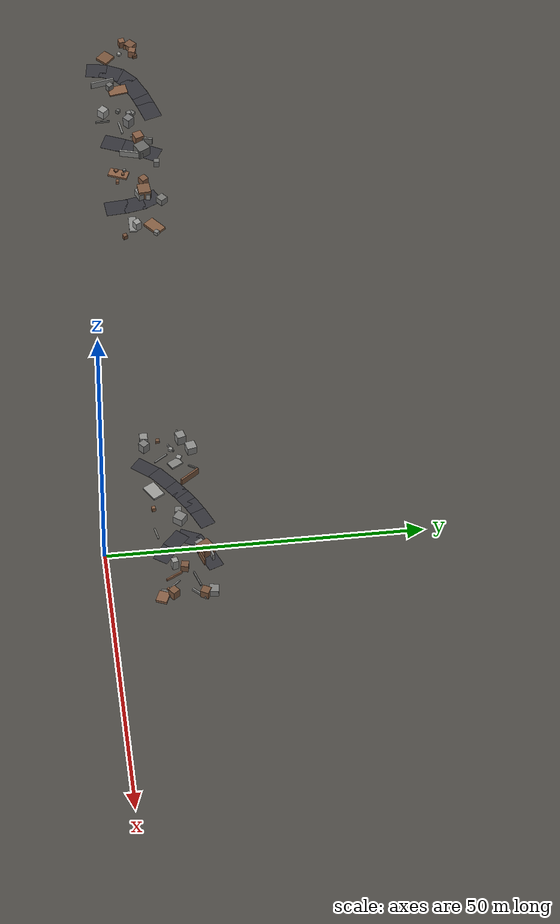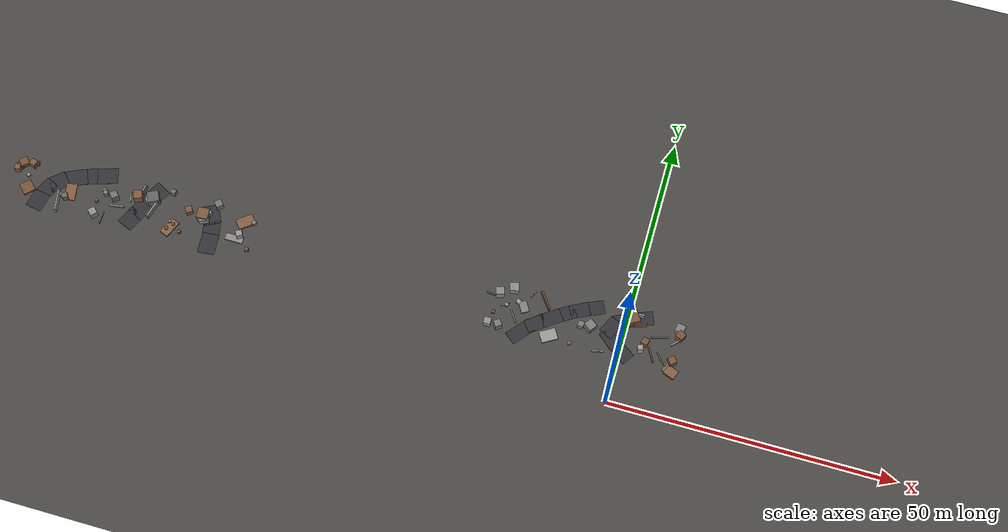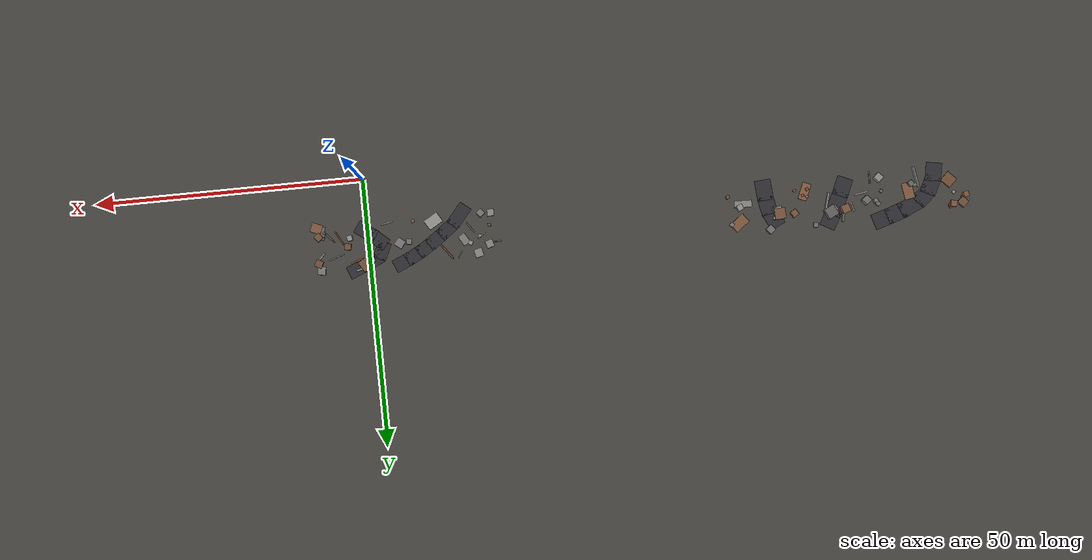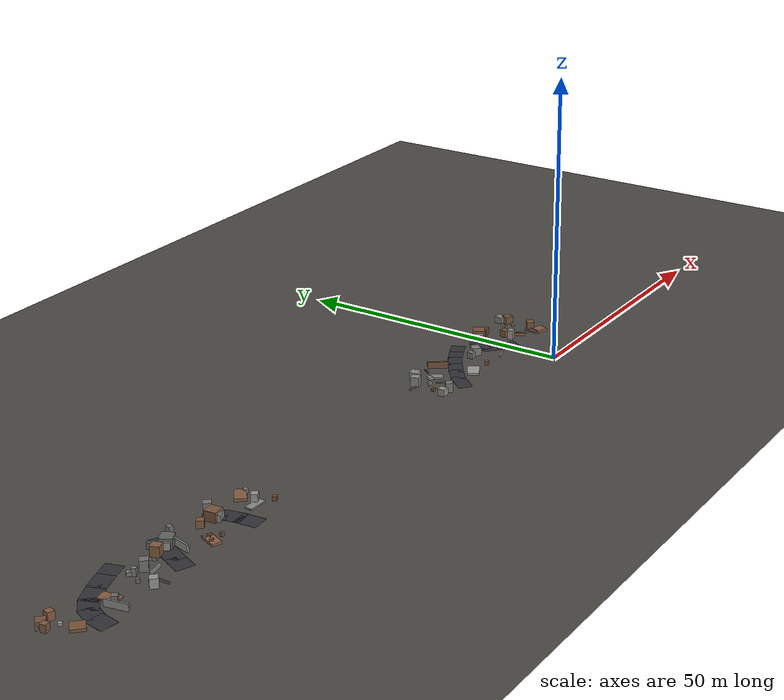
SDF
<sdf version="1.6">
 <world name="navitas_arena">
  <model name="ground_plane">
   <static>true</static>
   <link name="link">
    <collision name="collision">
     <geometry><plane><normal>0 0 1</normal><size>400 400</size></plane></geometry>
     <surface><friction><ode><mu>0.800</mu><mu2>0.800</mu2></ode></friction></surface>
    </collision>
    <visual name="visual">
     <cast_shadows>false</cast_shadows>
     <geometry><plane><normal>0 0 1</normal><size>400 400</size></plane></geometry>
     <material><ambient>0.300 0.290 0.270 1</ambient><diffuse>0.300 0.290 0.270 1</diffuse></material>
    </visual>
   </link>
  </model>
  <model name="road_kolay_1_15">
   <static>true</static>
   <pose>-105.991 8.426 0.040 0 0 1.407</pose>
   <link name="link">
    <collision name="col"><geometry><box><size>3.394 3.000 0.020</size></box></geometry></collision>
    <visual name="vis">
     <geometry><box><size>3.394 3.000 0.020</size></box></geometry>
     <material><ambient>0.20 0.20 0.22 1</ambient><diffuse>0.20 0.20 0.22 1</diffuse></material>
    </visual>
   </link>
  </model>
  <model name="road_kolay_1_16">
   <static>true</static>
   <pose>-105.227 10.817 0.040 0 0 1.121</pose>
   <link name="link">
    <collision name="col"><geometry><box><size>3.479 3.000 0.020</size></box></geometry></collision>
    <visual name="vis">
     <geometry><box><size>3.479 3.000 0.020</size></box></geometry>
     <material><ambient>0.20 0.20 0.22 1</ambient><diffuse>0.20 0.20 0.22 1</diffuse></material>
    </visual>
   </link>
  </model>
  <model name="road_kolay_1_17">
   <static>true</static>
   <pose>-103.758 12.767 0.040 0 0 0.715</pose>
   <link name="link">
    <collision name="col"><geometry><box><size>3.306 3.000 0.020</size></box></geometry></collision>
    <visual name="vis">
     <geometry><box><size>3.306 3.000 0.020</size></box></geometry>
     <material><ambient>0.20 0.20 0.22 1</ambient><diffuse>0.20 0.20 0.22 1</diffuse></material>
    </visual>
   </link>
  </model>
  <model name="road_kolay_1_18">
   <static>true</static>
   <pose>-101.231 14.292 0.040 0 0 0.427</pose>
   <link name="link">
    <collision name="col"><geometry><box><size>4.456 3.000 0.020</size></box></geometry></collision>
    <visual name="vis">
     <geometry><box><size>4.456 3.000 0.020</size></box></geometry>
     <material><ambient>0.20 0.20 0.22 1</ambient><diffuse>0.20 0.20 0.22 1</diffuse></material>
    </visual>
   </link>
  </model>
  <model name="road_kolay_1_19">
   <static>true</static>
   <pose>-98.331 15.460 0.040 0 0 0.325</pose>
   <link name="link">
    <collision name="col"><geometry><box><size>3.606 3.000 0.020</size></box></geometry></collision>
    <visual name="vis">
     <geometry><box><size>3.606 3.000 0.020</size></box></geometry>
     <material><ambient>0.20 0.20 0.22 1</ambient><diffuse>0.20 0.20 0.22 1</diffuse></material>
    </visual>
   </link>
  </model>
  <model name="road_kolay_1_20">
   <static>true</static>
   <pose>-95.734 16.298 0.040 0 0 0.299</pose>
   <link name="link">
    <collision name="col"><geometry><box><size>3.652 3.000 0.020</size></box></geometry></collision>
    <visual name="vis">
     <geometry><box><size>3.652 3.000 0.020</size></box></geometry>
     <material><ambient>0.20 0.20 0.22 1</ambient><diffuse>0.20 0.20 0.22 1</diffuse></material>
    </visual>
   </link>
  </model>
  <model name="road_kolay_2_12">
   <static>true</static>
   <pose>-88.860 9.639 0.040 0 0 1.168</pose>
   <link name="link">
    <collision name="col"><geometry><box><size>3.537 3.000 0.020</size></box></geometry></collision>
    <visual name="vis">
     <geometry><box><size>3.537 3.000 0.020</size></box></geometry>
     <material><ambient>0.20 0.20 0.22 1</ambient><diffuse>0.20 0.20 0.22 1</diffuse></material>
    </visual>
   </link>
  </model>
  <model name="road_kolay_2_13">
   <static>true</static>
   <pose>-87.527 12.588 0.040 0 0 1.131</pose>
   <link name="link">
    <collision name="col"><geometry><box><size>4.738 3.000 0.020</size></box></geometry></collision>
    <visual name="vis">
     <geometry><box><size>4.738 3.000 0.020</size></box></geometry>
     <material><ambient>0.20 0.20 0.22 1</ambient><diffuse>0.20 0.20 0.22 1</diffuse></material>
    </visual>
   </link>
  </model>
  <model name="road_kolay_2_14">
   <static>true</static>
   <pose>-86.109 15.414 0.040 0 0 1.067</pose>
   <link name="link">
    <collision name="col"><geometry><box><size>3.389 3.000 0.020</size></box></geometry></collision>
    <visual name="vis">
     <geometry><box><size>3.389 3.000 0.020</size></box></geometry>
     <material><ambient>0.20 0.20 0.22 1</ambient><diffuse>0.20 0.20 0.22 1</diffuse></material>
    </visual>
   </link>
  </model>
  <model name="road_kolay_3_14">
   <static>true</static>
   <pose>-74.221 8.910 0.040 0 0 1.650</pose>
   <link name="link">
    <collision name="col"><geometry><box><size>3.849 3.000 0.020</size></box></geometry></collision>
    <visual name="vis">
     <geometry><box><size>3.849 3.000 0.020</size></box></geometry>
     <material><ambient>0.20 0.20 0.22 1</ambient><diffuse>0.20 0.20 0.22 1</diffuse></material>
    </visual>
   </link>
  </model>
  <model name="road_kolay_3_15">
   <static>true</static>
   <pose>-74.607 11.690 0.040 0 0 1.773</pose>
   <link name="link">
    <collision name="col"><geometry><box><size>3.575 3.000 0.020</size></box></geometry></collision>
    <visual name="vis">
     <geometry><box><size>3.575 3.000 0.020</size></box></geometry>
     <material><ambient>0.20 0.20 0.22 1</ambient><diffuse>0.20 0.20 0.22 1</diffuse></material>
    </visual>
   </link>
  </model>
  <model name="road_kolay_3_16">
   <static>true</static>
   <pose>-75.477 14.234 0.040 0 0 2.024</pose>
   <link name="link">
    <collision name="col"><geometry><box><size>3.646 3.000 0.020</size></box></geometry></collision>
    <visual name="vis">
     <geometry><box><size>3.646 3.000 0.020</size></box></geometry>
     <material><ambient>0.20 0.20 0.22 1</ambient><diffuse>0.20 0.20 0.22 1</diffuse></material>
    </visual>
   </link>
  </model>
  <model name="blk_kolay_2_1_0">
   <static>true</static>
   <pose>-86.859 13.598 0.600 0 0 0.508</pose>
   <link name="link">
    <collision name="col"><geometry><box><size>1.029 1.029 1.200</size></box></geometry></collision>
    <visual name="vis">
     <geometry><box><size>1.029 1.029 1.200</size></box></geometry>
     <material><ambient>0.57 0.57 0.56 1</ambient><diffuse>0.57 0.57 0.56 1</diffuse></material>
    </visual>
   </link>
  </model>
  <model name="blk_kolay_2_1_1">
   <static>true</static>
   <pose>-85.567 12.383 0.600 0 0 1.314</pose>
   <link name="link">
    <collision name="col"><geometry><box><size>3.867 0.335 1.200</size></box></geometry></collision>
    <visual name="vis">
     <geometry><box><size>3.867 0.335 1.200</size></box></geometry>
     <material><ambient>0.54 0.54 0.53 1</ambient><diffuse>0.54 0.54 0.53 1</diffuse></material>
    </visual>
   </link>
  </model>
  <model name="blk_kolay_2_1_2">
   <static>true</static>
   <pose>-87.331 14.141 0.600 0 0 0.393</pose>
   <link name="link">
    <collision name="col"><geometry><box><size>0.584 0.584 1.200</size></box></geometry></collision>
    <visual name="vis">
     <geometry><box><size>0.584 0.584 1.200</size></box></geometry>
     <material><ambient>0.51 0.36 0.26 1</ambient><diffuse>0.51 0.36 0.26 1</diffuse></material>
    </visual>
   </link>
  </model>
  <model name="blk_kolay_2_1_3">
   <static>true</static>
   <pose>-88.463 14.715 0.600 0 0 1.386</pose>
   <link name="link">
    <collision name="col"><geometry><box><size>2.800 0.387 1.200</size></box></geometry></collision>
    <visual name="vis">
     <geometry><box><size>2.800 0.387 1.200</size></box></geometry>
     <material><ambient>0.43 0.43 0.42 1</ambient><diffuse>0.43 0.43 0.42 1</diffuse></material>
    </visual>
   </link>
  </model>
  <model name="blk_kolay_2_1_4">
   <static>true</static>
   <pose>-86.170 14.145 0.858 0 0 2.045</pose>
   <link name="link">
    <collision name="col"><geometry><box><size>2.029 2.029 1.716</size></box></geometry></collision>
    <visual name="vis">
     <geometry><box><size>2.029 2.029 1.716</size></box></geometry>
     <material><ambient>0.40 0.40 0.39 1</ambient><diffuse>0.40 0.40 0.39 1</diffuse></material>
    </visual>
   </link>
  </model>
  <model name="blk_kolay_2_1_5">
   <static>true</static>
   <pose>-88.877 13.804 0.860 0 0 0.342</pose>
   <link name="link">
    <collision name="col"><geometry><box><size>1.504 1.504 1.719</size></box></geometry></collision>
    <visual name="vis">
     <geometry><box><size>1.504 1.504 1.719</size></box></geometry>
     <material><ambient>0.52 0.36 0.26 1</ambient><diffuse>0.52 0.36 0.26 1</diffuse></material>
    </visual>
   </link>
  </model>
  <model name="blk_kolay_3_1_0">
   <static>true</static>
   <pose>-74.710 16.332 0.600 0 0 2.255</pose>
   <link name="link">
    <collision name="col"><geometry><box><size>1.280 1.280 1.200</size></box></geometry></collision>
    <visual name="vis">
     <geometry><box><size>1.280 1.280 1.200</size></box></geometry>
     <material><ambient>0.46 0.46 0.45 1</ambient><diffuse>0.46 0.46 0.45 1</diffuse></material>
    </visual>
   </link>
  </model>
  <model name="blk_kolay_3_1_1">
   <static>true</static>
   <pose>-76.638 13.593 0.838 0 0 1.657</pose>
   <link name="link">
    <collision name="col"><geometry><box><size>2.026 2.026 1.676</size></box></geometry></collision>
    <visual name="vis">
     <geometry><box><size>2.026 2.026 1.676</size></box></geometry>
     <material><ambient>0.49 0.35 0.25 1</ambient><diffuse>0.49 0.35 0.25 1</diffuse></material>
    </visual>
   </link>
  </model>
  <model name="blk_kolay_3_1_2">
   <static>true</static>
   <pose>-76.441 13.194 0.600 0 0 1.935</pose>
   <link name="link">
    <collision name="col"><geometry><box><size>1.768 1.768 1.200</size></box></geometry></collision>
    <visual name="vis">
     <geometry><box><size>1.768 1.768 1.200</size></box></geometry>
     <material><ambient>0.54 0.54 0.53 1</ambient><diffuse>0.54 0.54 0.53 1</diffuse></material>
    </visual>
   </link>
  </model>
  <model name="blk_kolay_3_1_3">
   <static>true</static>
   <pose>-75.715 14.254 0.600 0 0 1.275</pose>
   <link name="link">
    <collision name="col"><geometry><box><size>0.671 0.671 1.200</size></box></geometry></collision>
    <visual name="vis">
     <geometry><box><size>0.671 0.671 1.200</size></box></geometry>
     <material><ambient>0.60 0.60 0.59 1</ambient><diffuse>0.60 0.60 0.59 1</diffuse></material>
    </visual>
   </link>
  </model>
  <model name="blk_kolay_3_1_4">
   <static>true</static>
   <pose>-75.833 14.212 0.600 0 0 0.117</pose>
   <link name="link">
    <collision name="col"><geometry><box><size>0.583 0.583 1.200</size></box></geometry></collision>
    <visual name="vis">
     <geometry><box><size>0.583 0.583 1.200</size></box></geometry>
     <material><ambient>0.45 0.45 0.44 1</ambient><diffuse>0.45 0.45 0.44 1</diffuse></material>
    </visual>
   </link>
  </model>
  <model name="deb_kolay_6">
   <static>true</static>
   <pose>-90.384 13.557 0.102 0 0 1.856</pose>
   <link name="link">
    <collision name="col"><geometry><box><size>1.927 0.241 0.204</size></box></geometry></collision>
    <visual name="vis">
     <geometry><box><size>1.927 0.241 0.204</size></box></geometry>
     <material><ambient>0.59 0.59 0.58 1</ambient><diffuse>0.59 0.59 0.58 1</diffuse></material>
    </visual>
   </link>
  </model>
  <model name="deb_kolay_7">
   <static>true</static>
   <pose>-81.242 10.546 0.321 0 0 1.812</pose>
   <link name="link">
    <collision name="col"><geometry><box><size>0.436 0.436 0.642</size></box></geometry></collision>
    <visual name="vis">
     <geometry><box><size>0.436 0.436 0.642</size></box></geometry>
     <material><ambient>0.53 0.37 0.26 1</ambient><diffuse>0.53 0.37 0.26 1</diffuse></material>
    </visual>
   </link>
  </model>
  <model name="deb_kolay_25">
   <static>true</static>
   <pose>-79.404 13.769 0.609 0 0 0.580</pose>
   <link name="link">
    <collision name="col"><geometry><box><size>1.184 1.184 1.219</size></box></geometry></collision>
    <visual name="vis">
     <geometry><box><size>1.184 1.184 1.219</size></box></geometry>
     <material><ambient>0.50 0.35 0.25 1</ambient><diffuse>0.50 0.35 0.25 1</diffuse></material>
    </visual>
   </link>
  </model>
  <model name="deb_kolay_30">
   <static>true</static>
   <pose>-108.583 15.022 0.315 0 0 1.833</pose>
   <link name="link">
    <collision name="col"><geometry><box><size>0.771 0.771 0.630</size></box></geometry></collision>
    <visual name="vis">
     <geometry><box><size>0.771 0.771 0.630</size></box></geometry>
     <material><ambient>0.46 0.32 0.23 1</ambient><diffuse>0.46 0.32 0.23 1</diffuse></material>
    </visual>
   </link>
  </model>
  <model name="deb_kolay_41">
   <static>true</static>
   <pose>-81.700 9.876 0.176 0 0 1.180</pose>
   <link name="link">
    <collision name="col"><geometry><box><size>3.201 1.613 0.352</size></box></geometry></collision>
    <visual name="vis">
     <geometry><box><size>3.201 1.613 0.352</size></box></geometry>
     <material><ambient>0.55 0.38 0.27 1</ambient><diffuse>0.55 0.38 0.27 1</diffuse></material>
    </visual>
   </link>
  </model>
  <model name="deb_kolay_60">
   <static>true</static>
   <pose>-100.939 11.514 0.121 0 0 1.742</pose>
   <link name="link">
    <collision name="col"><geometry><box><size>3.096 1.891 0.242</size></box></geometry></collision>
    <visual name="vis">
     <geometry><box><size>3.096 1.891 0.242</size></box></geometry>
     <material><ambient>0.53 0.37 0.26 1</ambient><diffuse>0.53 0.37 0.26 1</diffuse></material>
    </visual>
   </link>
  </model>
  <model name="deb_kolay_64">
   <static>true</static>
   <pose>-108.619 10.173 0.215 0 0 2.353</pose>
   <link name="link">
    <collision name="col"><geometry><box><size>2.190 2.139 0.431</size></box></geometry></collision>
    <visual name="vis">
     <geometry><box><size>2.190 2.139 0.431</size></box></geometry>
     <material><ambient>0.47 0.33 0.23 1</ambient><diffuse>0.47 0.33 0.23 1</diffuse></material>
    </visual>
   </link>
  </model>
  <model name="deb_kolay_65">
   <static>true</static>
   <pose>-110.910 13.759 0.410 0 0 2.949</pose>
   <link name="link">
    <collision name="col"><geometry><box><size>0.675 0.675 0.820</size></box></geometry></collision>
    <visual name="vis">
     <geometry><box><size>0.675 0.675 0.820</size></box></geometry>
     <material><ambient>0.49 0.34 0.24 1</ambient><diffuse>0.49 0.34 0.24 1</diffuse></material>
    </visual>
   </link>
  </model>
  <model name="deb_kolay_89">
   <static>true</static>
   <pose>-111.458 13.164 0.639 0 0 1.769</pose>
   <link name="link">
    <collision name="col"><geometry><box><size>0.986 0.986 1.279</size></box></geometry></collision>
    <visual name="vis">
     <geometry><box><size>0.986 0.986 1.279</size></box></geometry>
     <material><ambient>0.52 0.36 0.26 1</ambient><diffuse>0.52 0.36 0.26 1</diffuse></material>
    </visual>
   </link>
  </model>
  <model name="deb_kolay_101">
   <static>true</static>
   <pose>-69.360 11.764 0.764 0 0 2.040</pose>
   <link name="link">
    <collision name="col"><geometry><box><size>1.076 1.076 1.528</size></box></geometry></collision>
    <visual name="vis">
     <geometry><box><size>1.076 1.076 1.528</size></box></geometry>
     <material><ambient>0.60 0.60 0.59 1</ambient><diffuse>0.60 0.60 0.59 1</diffuse></material>
    </visual>
   </link>
  </model>
  <model name="deb_kolay_102">
   <static>true</static>
   <pose>-93.935 8.340 0.181 0 0 1.582</pose>
   <link name="link">
    <collision name="col"><geometry><box><size>2.228 0.212 0.363</size></box></geometry></collision>
    <visual name="vis">
     <geometry><box><size>2.228 0.212 0.363</size></box></geometry>
     <material><ambient>0.42 0.42 0.41 1</ambient><diffuse>0.42 0.42 0.41 1</diffuse></material>
    </visual>
   </link>
  </model>
  <model name="deb_kolay_113">
   <static>true</static>
   <pose>-109.016 14.709 0.678 0 0 2.860</pose>
   <link name="link">
    <collision name="col"><geometry><box><size>1.118 1.118 1.357</size></box></geometry></collision>
    <visual name="vis">
     <geometry><box><size>1.118 1.118 1.357</size></box></geometry>
     <material><ambient>0.52 0.36 0.26 1</ambient><diffuse>0.52 0.36 0.26 1</diffuse></material>
    </visual>
   </link>
  </model>
  <model name="deb_kolay_119">
   <static>true</static>
   <pose>-110.812 14.541 0.505 0 0 2.338</pose>
   <link name="link">
    <collision name="col"><geometry><box><size>1.487 1.487 1.011</size></box></geometry></collision>
    <visual name="vis">
     <geometry><box><size>1.487 1.487 1.011</size></box></geometry>
     <material><ambient>0.47 0.33 0.24 1</ambient><diffuse>0.47 0.33 0.24 1</diffuse></material>
    </visual>
   </link>
  </model>
  <model name="deb_kolay_135">
   <static>true</static>
   <pose>-95.486 8.585 0.762 0 0 0.783</pose>
   <link name="link">
    <collision name="col"><geometry><box><size>1.309 1.309 1.524</size></box></geometry></collision>
    <visual name="vis">
     <geometry><box><size>1.309 1.309 1.524</size></box></geometry>
     <material><ambient>0.58 0.58 0.57 1</ambient><diffuse>0.58 0.58 0.57 1</diffuse></material>
    </visual>
   </link>
  </model>
  <model name="deb_kolay_140">
   <static>true</static>
   <pose>-67.337 9.593 0.373 0 0 1.949</pose>
   <link name="link">
    <collision name="col"><geometry><box><size>0.676 0.676 0.746</size></box></geometry></collision>
    <visual name="vis">
     <geometry><box><size>0.676 0.676 0.746</size></box></geometry>
     <material><ambient>0.46 0.32 0.23 1</ambient><diffuse>0.46 0.32 0.23 1</diffuse></material>
    </visual>
   </link>
  </model>
  <model name="deb_kolay_144">
   <static>true</static>
   <pose>-82.149 9.509 0.340 0 0 2.113</pose>
   <link name="link">
    <collision name="col"><geometry><box><size>0.564 0.564 0.680</size></box></geometry></collision>
    <visual name="vis">
     <geometry><box><size>0.564 0.564 0.680</size></box></geometry>
     <material><ambient>0.47 0.33 0.24 1</ambient><diffuse>0.47 0.33 0.24 1</diffuse></material>
    </visual>
   </link>
  </model>
  <model name="deb_kolay_145">
   <static>true</static>
   <pose>-109.331 12.542 0.202 0 0 2.355</pose>
   <link name="link">
    <collision name="col"><geometry><box><size>0.583 0.583 0.404</size></box></geometry></collision>
    <visual name="vis">
     <geometry><box><size>0.583 0.583 0.404</size></box></geometry>
     <material><ambient>0.59 0.59 0.57 1</ambient><diffuse>0.59 0.59 0.57 1</diffuse></material>
    </visual>
   </link>
  </model>
  <model name="deb_kolay_146">
   <static>true</static>
   <pose>-92.185 11.169 0.176 0 0 0.159</pose>
   <link name="link">
    <collision name="col"><geometry><box><size>2.623 0.259 0.351</size></box></geometry></collision>
    <visual name="vis">
     <geometry><box><size>2.623 0.259 0.351</size></box></geometry>
     <material><ambient>0.59 0.59 0.58 1</ambient><diffuse>0.59 0.59 0.58 1</diffuse></material>
    </visual>
   </link>
  </model>
  <model name="deb_kolay_151">
   <static>true</static>
   <pose>-102.165 10.475 0.372 0 0 1.393</pose>
   <link name="link">
    <collision name="col"><geometry><box><size>0.635 0.635 0.743</size></box></geometry></collision>
    <visual name="vis">
     <geometry><box><size>0.635 0.635 0.743</size></box></geometry>
     <material><ambient>0.50 0.50 0.49 1</ambient><diffuse>0.50 0.50 0.49 1</diffuse></material>
    </visual>
   </link>
  </model>
  <model name="deb_kolay_160">
   <static>true</static>
   <pose>-95.870 11.120 0.328 0 0 0.817</pose>
   <link name="link">
    <collision name="col"><geometry><box><size>0.566 0.566 0.655</size></box></geometry></collision>
    <visual name="vis">
     <geometry><box><size>0.566 0.566 0.655</size></box></geometry>
     <material><ambient>0.40 0.40 0.39 1</ambient><diffuse>0.40 0.40 0.39 1</diffuse></material>
    </visual>
   </link>
  </model>
  <model name="deb_kolay_172">
   <static>true</static>
   <pose>-95.137 13.394 0.326 0 0 2.424</pose>
   <link name="link">
    <collision name="col"><geometry><box><size>0.762 0.762 0.652</size></box></geometry></collision>
    <visual name="vis">
     <geometry><box><size>0.762 0.762 0.652</size></box></geometry>
     <material><ambient>0.45 0.45 0.44 1</ambient><diffuse>0.45 0.45 0.44 1</diffuse></material>
    </visual>
   </link>
  </model>
  <model name="deb_kolay_174">
   <static>true</static>
   <pose>-92.898 12.575 0.891 0 0 0.718</pose>
   <link name="link">
    <collision name="col"><geometry><box><size>1.292 1.292 1.782</size></box></geometry></collision>
    <visual name="vis">
     <geometry><box><size>1.292 1.292 1.782</size></box></geometry>
     <material><ambient>0.45 0.45 0.45 1</ambient><diffuse>0.45 0.45 0.45 1</diffuse></material>
    </visual>
   </link>
  </model>
  <model name="deb_kolay_175">
   <static>true</static>
   <pose>-69.177 14.588 0.221 0 0 0.676</pose>
   <link name="link">
    <collision name="col"><geometry><box><size>3.075 1.954 0.442</size></box></geometry></collision>
    <visual name="vis">
     <geometry><box><size>3.075 1.954 0.442</size></box></geometry>
     <material><ambient>0.52 0.37 0.26 1</ambient><diffuse>0.52 0.37 0.26 1</diffuse></material>
    </visual>
   </link>
  </model>
  <model name="deb_kolay_176">
   <static>true</static>
   <pose>-101.412 10.237 0.616 0 0 2.126</pose>
   <link name="link">
    <collision name="col"><geometry><box><size>0.940 0.940 1.232</size></box></geometry></collision>
    <visual name="vis">
     <geometry><box><size>0.940 0.940 1.232</size></box></geometry>
     <material><ambient>0.43 0.43 0.42 1</ambient><diffuse>0.43 0.43 0.42 1</diffuse></material>
    </visual>
   </link>
  </model>
  <model name="deb_kolay_178">
   <static>true</static>
   <pose>-110.775 14.591 0.214 0 0 0.292</pose>
   <link name="link">
    <collision name="col"><geometry><box><size>2.916 0.196 0.427</size></box></geometry></collision>
    <visual name="vis">
     <geometry><box><size>2.916 0.196 0.427</size></box></geometry>
     <material><ambient>0.53 0.53 0.52 1</ambient><diffuse>0.53 0.53 0.52 1</diffuse></material>
    </visual>
   </link>
  </model>
  <model name="deb_kolay_184">
   <static>true</static>
   <pose>-79.817 9.515 0.298 0 0 2.959</pose>
   <link name="link">
    <collision name="col"><geometry><box><size>0.505 0.505 0.596</size></box></geometry></collision>
    <visual name="vis">
     <geometry><box><size>0.505 0.505 0.596</size></box></geometry>
     <material><ambient>0.49 0.34 0.24 1</ambient><diffuse>0.49 0.34 0.24 1</diffuse></material>
    </visual>
   </link>
  </model>
  <model name="deb_kolay_186">
   <static>true</static>
   <pose>-81.968 10.852 0.399 0 0 0.291</pose>
   <link name="link">
    <collision name="col"><geometry><box><size>0.466 0.466 0.799</size></box></geometry></collision>
    <visual name="vis">
     <geometry><box><size>0.466 0.466 0.799</size></box></geometry>
     <material><ambient>0.47 0.47 0.46 1</ambient><diffuse>0.47 0.47 0.46 1</diffuse></material>
    </visual>
   </link>
  </model>
  <model name="deb_kolay_192">
   <static>true</static>
   <pose>-67.688 14.784 0.327 0 0 0.876</pose>
   <link name="link">
    <collision name="col"><geometry><box><size>0.728 0.728 0.655</size></box></geometry></collision>
    <visual name="vis">
     <geometry><box><size>0.728 0.728 0.655</size></box></geometry>
     <material><ambient>0.50 0.50 0.49 1</ambient><diffuse>0.50 0.50 0.49 1</diffuse></material>
    </visual>
   </link>
  </model>
  <model name="deb_kolay_193">
   <static>true</static>
   <pose>-70.107 11.105 0.124 0 0 3.128</pose>
   <link name="link">
    <collision name="col"><geometry><box><size>3.229 1.253 0.247</size></box></geometry></collision>
    <visual name="vis">
     <geometry><box><size>3.229 1.253 0.247</size></box></geometry>
     <material><ambient>0.55 0.55 0.54 1</ambient><diffuse>0.55 0.55 0.54 1</diffuse></material>
    </visual>
   </link>
  </model>
  <model name="chic_kolay_7">
   <static>true</static>
   <pose>-102.438 9.074 0.600 0 0 1.758</pose>
   <link name="link">
    <collision name="col"><geometry><box><size>3.875 0.280 1.200</size></box></geometry></collision>
    <visual name="vis">
     <geometry><box><size>3.875 0.280 1.200</size></box></geometry>
     <material><ambient>0.57 0.57 0.56 1</ambient><diffuse>0.57 0.57 0.56 1</diffuse></material>
    </visual>
   </link>
  </model>
  <model name="chic_kolay_9">
   <static>true</static>
   <pose>-94.651 12.792 0.600 0 0 1.966</pose>
   <link name="link">
    <collision name="col"><geometry><box><size>0.732 0.732 1.200</size></box></geometry></collision>
    <visual name="vis">
     <geometry><box><size>0.732 0.732 1.200</size></box></geometry>
     <material><ambient>0.48 0.48 0.47 1</ambient><diffuse>0.48 0.48 0.47 1</diffuse></material>
    </visual>
   </link>
  </model>
  <model name="chic_kolay_11">
   <static>true</static>
   <pose>-83.159 16.298 0.600 0 0 3.015</pose>
   <link name="link">
    <collision name="col"><geometry><box><size>0.822 0.822 1.200</size></box></geometry></collision>
    <visual name="vis">
     <geometry><box><size>0.822 0.822 1.200</size></box></geometry>
     <material><ambient>0.45 0.45 0.44 1</ambient><diffuse>0.45 0.45 0.44 1</diffuse></material>
    </visual>
   </link>
  </model>
  <model name="road_orta_1_16">
   <static>true</static>
   <pose>-17.243 8.274 0.040 0 0 0.877</pose>
   <link name="link">
    <collision name="col"><geometry><box><size>4.496 2.500 0.020</size></box></geometry></collision>
    <visual name="vis">
     <geometry><box><size>4.496 2.500 0.020</size></box></geometry>
     <material><ambient>0.20 0.20 0.22 1</ambient><diffuse>0.20 0.20 0.22 1</diffuse></material>
    </visual>
   </link>
  </model>
  <model name="road_orta_1_17">
   <static>true</static>
   <pose>-14.958 10.541 0.040 0 0 0.662</pose>
   <link name="link">
    <collision name="col"><geometry><box><size>3.779 2.500 0.020</size></box></geometry></collision>
    <visual name="vis">
     <geometry><box><size>3.779 2.500 0.020</size></box></geometry>
     <material><ambient>0.20 0.20 0.22 1</ambient><diffuse>0.20 0.20 0.22 1</diffuse></material>
    </visual>
   </link>
  </model>
  <model name="road_orta_1_18">
   <static>true</static>
   <pose>-12.710 12.213 0.040 0 0 0.616</pose>
   <link name="link">
    <collision name="col"><geometry><box><size>3.626 2.500 0.020</size></box></geometry></collision>
    <visual name="vis">
     <geometry><box><size>3.626 2.500 0.020</size></box></geometry>
     <material><ambient>0.20 0.20 0.22 1</ambient><diffuse>0.20 0.20 0.22 1</diffuse></material>
    </visual>
   </link>
  </model>
  <model name="road_orta_1_19">
   <static>true</static>
   <pose>-10.549 13.662 0.040 0 0 0.563</pose>
   <link name="link">
    <collision name="col"><geometry><box><size>3.380 2.500 0.020</size></box></geometry></collision>
    <visual name="vis">
     <geometry><box><size>3.380 2.500 0.020</size></box></geometry>
     <material><ambient>0.20 0.20 0.22 1</ambient><diffuse>0.20 0.20 0.22 1</diffuse></material>
    </visual>
   </link>
  </model>
  <model name="road_orta_1_20">
   <static>true</static>
   <pose>-8.382 14.896 0.040 0 0 0.473</pose>
   <link name="link">
    <collision name="col"><geometry><box><size>3.413 2.500 0.020</size></box></geometry></collision>
    <visual name="vis">
     <geometry><box><size>3.413 2.500 0.020</size></box></geometry>
     <material><ambient>0.20 0.20 0.22 1</ambient><diffuse>0.20 0.20 0.22 1</diffuse></material>
    </visual>
   </link>
  </model>
  <model name="road_orta_1_21">
   <static>true</static>
   <pose>-6.081 15.986 0.040 0 0 0.412</pose>
   <link name="link">
    <collision name="col"><geometry><box><size>3.482 2.500 0.020</size></box></geometry></collision>
    <visual name="vis">
     <geometry><box><size>3.482 2.500 0.020</size></box></geometry>
     <material><ambient>0.20 0.20 0.22 1</ambient><diffuse>0.20 0.20 0.22 1</diffuse></material>
    </visual>
   </link>
  </model>
  <model name="road_orta_2_13">
   <static>true</static>
   <pose>0.252 9.646 0.040 0 0 2.528</pose>
   <link name="link">
    <collision name="col"><geometry><box><size>4.066 2.500 0.020</size></box></geometry></collision>
    <visual name="vis">
     <geometry><box><size>4.066 2.500 0.020</size></box></geometry>
     <material><ambient>0.20 0.20 0.22 1</ambient><diffuse>0.20 0.20 0.22 1</diffuse></material>
    </visual>
   </link>
  </model>
  <model name="road_orta_2_14">
   <static>true</static>
   <pose>-1.986 11.401 0.040 0 0 2.412</pose>
   <link name="link">
    <collision name="col"><geometry><box><size>3.431 2.500 0.020</size></box></geometry></collision>
    <visual name="vis">
     <geometry><box><size>3.431 2.500 0.020</size></box></geometry>
     <material><ambient>0.20 0.20 0.22 1</ambient><diffuse>0.20 0.20 0.22 1</diffuse></material>
    </visual>
   </link>
  </model>
  <model name="road_orta_2_15">
   <static>true</static>
   <pose>-2.401 13.371 0.040 0 0 1.132</pose>
   <link name="link">
    <collision name="col"><geometry><box><size>3.388 2.500 0.020</size></box></geometry></collision>
    <visual name="vis">
     <geometry><box><size>3.388 2.500 0.020</size></box></geometry>
     <material><ambient>0.20 0.20 0.22 1</ambient><diffuse>0.20 0.20 0.22 1</diffuse></material>
    </visual>
   </link>
  </model>
  <model name="road_orta_2_16">
   <static>true</static>
   <pose>-0.500 15.135 0.040 0 0 0.435</pose>
   <link name="link">
    <collision name="col"><geometry><box><size>3.927 2.500 0.020</size></box></geometry></collision>
    <visual name="vis">
     <geometry><box><size>3.927 2.500 0.020</size></box></geometry>
     <material><ambient>0.20 0.20 0.22 1</ambient><diffuse>0.20 0.20 0.22 1</diffuse></material>
    </visual>
   </link>
  </model>
  <model name="road_orta_2_17">
   <static>true</static>
   <pose>2.301 16.352 0.040 0 0 0.385</pose>
   <link name="link">
    <collision name="col"><geometry><box><size>3.982 2.500 0.020</size></box></geometry></collision>
    <visual name="vis">
     <geometry><box><size>3.982 2.500 0.020</size></box></geometry>
     <material><ambient>0.20 0.20 0.22 1</ambient><diffuse>0.20 0.20 0.22 1</diffuse></material>
    </visual>
   </link>
  </model>
  <model name="blk_orta_2_2_0">
   <static>true</static>
   <pose>-0.213 15.009 0.600 0 0 0.556</pose>
   <link name="link">
    <collision name="col"><geometry><box><size>1.363 1.363 1.200</size></box></geometry></collision>
    <visual name="vis">
     <geometry><box><size>1.363 1.363 1.200</size></box></geometry>
     <material><ambient>0.55 0.55 0.54 1</ambient><diffuse>0.55 0.55 0.54 1</diffuse></material>
    </visual>
   </link>
  </model>
  <model name="blk_orta_2_2_2">
   <static>true</static>
   <pose>2.376 15.000 0.600 0 0 0.324</pose>
   <link name="link">
    <collision name="col"><geometry><box><size>2.204 0.240 1.200</size></box></geometry></collision>
    <visual name="vis">
     <geometry><box><size>2.204 0.240 1.200</size></box></geometry>
     <material><ambient>0.48 0.34 0.24 1</ambient><diffuse>0.48 0.34 0.24 1</diffuse></material>
    </visual>
   </link>
  </model>
  <model name="blk_orta_2_2_3">
   <static>true</static>
   <pose>0.978 16.384 0.600 0 0 0.245</pose>
   <link name="link">
    <collision name="col"><geometry><box><size>3.300 0.337 1.200</size></box></geometry></collision>
    <visual name="vis">
     <geometry><box><size>3.300 0.337 1.200</size></box></geometry>
     <material><ambient>0.55 0.55 0.54 1</ambient><diffuse>0.55 0.55 0.54 1</diffuse></material>
    </visual>
   </link>
  </model>
  <model name="blk_orta_2_2_4">
   <static>true</static>
   <pose>0.761 15.718 0.797 0 0 2.130</pose>
   <link name="link">
    <collision name="col"><geometry><box><size>2.118 2.118 1.593</size></box></geometry></collision>
    <visual name="vis">
     <geometry><box><size>2.118 2.118 1.593</size></box></geometry>
     <material><ambient>0.48 0.33 0.24 1</ambient><diffuse>0.48 0.33 0.24 1</diffuse></material>
    </visual>
   </link>
  </model>
  <model name="deb_orta_5">
   <static>true</static>
   <pose>8.631 9.219 0.153 0 0 1.422</pose>
   <link name="link">
    <collision name="col"><geometry><box><size>2.465 1.364 0.305</size></box></geometry></collision>
    <visual name="vis">
     <geometry><box><size>2.465 1.364 0.305</size></box></geometry>
     <material><ambient>0.41 0.41 0.40 1</ambient><diffuse>0.41 0.41 0.40 1</diffuse></material>
    </visual>
   </link>
  </model>
  <model name="deb_orta_7">
   <static>true</static>
   <pose>9.216 13.925 0.204 0 0 0.792</pose>
   <link name="link">
    <collision name="col"><geometry><box><size>2.745 0.298 0.408</size></box></geometry></collision>
    <visual name="vis">
     <geometry><box><size>2.745 0.298 0.408</size></box></geometry>
     <material><ambient>0.54 0.54 0.53 1</ambient><diffuse>0.54 0.54 0.53 1</diffuse></material>
    </visual>
   </link>
  </model>
  <model name="deb_orta_25">
   <static>true</static>
   <pose>-16.829 15.474 0.128 0 0 1.019</pose>
   <link name="link">
    <collision name="col"><geometry><box><size>1.523 0.192 0.256</size></box></geometry></collision>
    <visual name="vis">
     <geometry><box><size>1.523 0.192 0.256</size></box></geometry>
     <material><ambient>0.43 0.43 0.42 1</ambient><diffuse>0.43 0.43 0.42 1</diffuse></material>
    </visual>
   </link>
  </model>
  <model name="deb_orta_35">
   <static>true</static>
   <pose>-22.462 14.075 0.854 0 0 1.866</pose>
   <link name="link">
    <collision name="col"><geometry><box><size>1.388 1.388 1.709</size></box></geometry></collision>
    <visual name="vis">
     <geometry><box><size>1.388 1.388 1.709</size></box></geometry>
     <material><ambient>0.54 0.54 0.53 1</ambient><diffuse>0.54 0.54 0.53 1</diffuse></material>
    </visual>
   </link>
  </model>
  <model name="deb_orta_46">
   <static>true</static>
   <pose>-23.115 8.293 0.600 0 0 1.580</pose>
   <link name="link">
    <collision name="col"><geometry><box><size>1.241 1.241 1.199</size></box></geometry></collision>
    <visual name="vis">
     <geometry><box><size>1.241 1.241 1.199</size></box></geometry>
     <material><ambient>0.56 0.56 0.55 1</ambient><diffuse>0.56 0.56 0.55 1</diffuse></material>
    </visual>
   </link>
  </model>
  <model name="deb_orta_72">
   <static>true</static>
   <pose>-19.120 10.640 0.103 0 0 2.185</pose>
   <link name="link">
    <collision name="col"><geometry><box><size>2.539 0.252 0.207</size></box></geometry></collision>
    <visual name="vis">
     <geometry><box><size>2.539 0.252 0.207</size></box></geometry>
     <material><ambient>0.48 0.48 0.47 1</ambient><diffuse>0.48 0.48 0.47 1</diffuse></material>
    </visual>
   </link>
  </model>
  <model name="deb_orta_80">
   <static>true</static>
   <pose>-7.537 12.234 0.537 0 0 1.507</pose>
   <link name="link">
    <collision name="col"><geometry><box><size>1.021 1.021 1.075</size></box></geometry></collision>
    <visual name="vis">
     <geometry><box><size>1.021 1.021 1.075</size></box></geometry>
     <material><ambient>0.47 0.47 0.46 1</ambient><diffuse>0.47 0.47 0.46 1</diffuse></material>
    </visual>
   </link>
  </model>
  <model name="deb_orta_86">
   <static>true</static>
   <pose>8.077 9.232 0.323 0 0 0.698</pose>
   <link name="link">
    <collision name="col"><geometry><box><size>0.411 0.411 0.645</size></box></geometry></collision>
    <visual name="vis">
     <geometry><box><size>0.411 0.411 0.645</size></box></geometry>
     <material><ambient>0.54 0.38 0.27 1</ambient><diffuse>0.54 0.38 0.27 1</diffuse></material>
    </visual>
   </link>
  </model>
  <model name="deb_orta_93">
   <static>true</static>
   <pose>-18.950 13.488 0.202 0 0 2.687</pose>
   <link name="link">
    <collision name="col"><geometry><box><size>0.771 0.771 0.405</size></box></geometry></collision>
    <visual name="vis">
     <geometry><box><size>0.771 0.771 0.405</size></box></geometry>
     <material><ambient>0.60 0.60 0.59 1</ambient><diffuse>0.60 0.60 0.59 1</diffuse></material>
    </visual>
   </link>
  </model>
  <model name="deb_orta_99">
   <static>true</static>
   <pose>9.408 8.210 0.227 0 0 2.746</pose>
   <link name="link">
    <collision name="col"><geometry><box><size>2.041 1.761 0.454</size></box></geometry></collision>
    <visual name="vis">
     <geometry><box><size>2.041 1.761 0.454</size></box></geometry>
     <material><ambient>0.53 0.37 0.27 1</ambient><diffuse>0.53 0.37 0.27 1</diffuse></material>
    </visual>
   </link>
  </model>
  <model name="deb_orta_110">
   <static>true</static>
   <pose>5.309 10.389 0.224 0 0 2.075</pose>
   <link name="link">
    <collision name="col"><geometry><box><size>2.891 0.211 0.449</size></box></geometry></collision>
    <visual name="vis">
     <geometry><box><size>2.891 0.211 0.449</size></box></geometry>
     <material><ambient>0.55 0.38 0.27 1</ambient><diffuse>0.55 0.38 0.27 1</diffuse></material>
    </visual>
   </link>
  </model>
  <model name="deb_orta_122">
   <static>true</static>
   <pose>7.004 10.239 0.110 0 0 2.293</pose>
   <link name="link">
    <collision name="col"><geometry><box><size>2.364 0.212 0.219</size></box></geometry></collision>
    <visual name="vis">
     <geometry><box><size>2.364 0.212 0.219</size></box></geometry>
     <material><ambient>0.49 0.49 0.48 1</ambient><diffuse>0.49 0.49 0.48 1</diffuse></material>
    </visual>
   </link>
  </model>
  <model name="deb_orta_129">
   <static>true</static>
   <pose>-17.813 12.788 0.154 0 0 2.106</pose>
   <link name="link">
    <collision name="col"><geometry><box><size>2.053 1.407 0.308</size></box></geometry></collision>
    <visual name="vis">
     <geometry><box><size>2.053 1.407 0.308</size></box></geometry>
     <material><ambient>0.51 0.51 0.50 1</ambient><diffuse>0.51 0.51 0.50 1</diffuse></material>
    </visual>
   </link>
  </model>
  <model name="deb_orta_137">
   <static>true</static>
   <pose>9.442 14.851 0.670 0 0 1.095</pose>
   <link name="link">
    <collision name="col"><geometry><box><size>1.360 1.360 1.340</size></box></geometry></collision>
    <visual name="vis">
     <geometry><box><size>1.360 1.360 1.340</size></box></geometry>
     <material><ambient>0.47 0.33 0.23 1</ambient><diffuse>0.47 0.33 0.23 1</diffuse></material>
    </visual>
   </link>
  </model>
  <model name="deb_orta_139">
   <static>true</static>
   <pose>-21.074 12.376 0.176 0 0 0.548</pose>
   <link name="link">
    <collision name="col"><geometry><box><size>1.692 0.170 0.351</size></box></geometry></collision>
    <visual name="vis">
     <geometry><box><size>1.692 0.170 0.351</size></box></geometry>
     <material><ambient>0.59 0.59 0.58 1</ambient><diffuse>0.59 0.59 0.58 1</diffuse></material>
    </visual>
   </link>
  </model>
  <model name="deb_orta_158">
   <static>true</static>
   <pose>3.338 10.634 0.888 0 0 1.795</pose>
   <link name="link">
    <collision name="col"><geometry><box><size>0.940 0.940 1.777</size></box></geometry></collision>
    <visual name="vis">
     <geometry><box><size>0.940 0.940 1.777</size></box></geometry>
     <material><ambient>0.61 0.61 0.60 1</ambient><diffuse>0.61 0.61 0.60 1</diffuse></material>
    </visual>
   </link>
  </model>
  <model name="deb_orta_170">
   <static>true</static>
   <pose>9.103 9.961 0.758 0 0 0.644</pose>
   <link name="link">
    <collision name="col"><geometry><box><size>1.258 1.258 1.517</size></box></geometry></collision>
    <visual name="vis">
     <geometry><box><size>1.258 1.258 1.517</size></box></geometry>
     <material><ambient>0.48 0.34 0.24 1</ambient><diffuse>0.48 0.34 0.24 1</diffuse></material>
    </visual>
   </link>
  </model>
  <model name="deb_orta_172">
   <static>true</static>
   <pose>-20.786 12.362 0.218 0 0 2.678</pose>
   <link name="link">
    <collision name="col"><geometry><box><size>0.578 0.578 0.436</size></box></geometry></collision>
    <visual name="vis">
     <geometry><box><size>0.578 0.578 0.436</size></box></geometry>
     <material><ambient>0.58 0.58 0.57 1</ambient><diffuse>0.58 0.58 0.57 1</diffuse></material>
    </visual>
   </link>
  </model>
  <model name="deb_orta_177">
   <static>true</static>
   <pose>-12.384 8.878 0.179 0 0 0.539</pose>
   <link name="link">
    <collision name="col"><geometry><box><size>2.911 2.038 0.358</size></box></geometry></collision>
    <visual name="vis">
     <geometry><box><size>2.911 2.038 0.358</size></box></geometry>
     <material><ambient>0.61 0.61 0.60 1</ambient><diffuse>0.61 0.61 0.60 1</diffuse></material>
    </visual>
   </link>
  </model>
  <model name="deb_orta_182">
   <static>true</static>
   <pose>-21.264 8.206 0.804 0 0 0.659</pose>
   <link name="link">
    <collision name="col"><geometry><box><size>1.219 1.219 1.608</size></box></geometry></collision>
    <visual name="vis">
     <geometry><box><size>1.219 1.219 1.608</size></box></geometry>
     <material><ambient>0.48 0.48 0.47 1</ambient><diffuse>0.48 0.48 0.47 1</diffuse></material>
    </visual>
   </link>
  </model>
  <model name="deb_orta_191">
   <static>true</static>
   <pose>-20.294 15.547 0.706 0 0 0.229</pose>
   <link name="link">
    <collision name="col"><geometry><box><size>1.551 1.551 1.413</size></box></geometry></collision>
    <visual name="vis">
     <geometry><box><size>1.551 1.551 1.413</size></box></geometry>
     <material><ambient>0.55 0.55 0.54 1</ambient><diffuse>0.55 0.55 0.54 1</diffuse></material>
    </visual>
   </link>
  </model>
  <model name="deb_orta_193">
   <static>true</static>
   <pose>3.851 12.167 0.619 0 0 2.922</pose>
   <link name="link">
    <collision name="col"><geometry><box><size>1.179 1.179 1.239</size></box></geometry></collision>
    <visual name="vis">
     <geometry><box><size>1.179 1.179 1.239</size></box></geometry>
     <material><ambient>0.47 0.33 0.24 1</ambient><diffuse>0.47 0.33 0.24 1</diffuse></material>
    </visual>
   </link>
  </model>
  <model name="deb_orta_195">
   <static>true</static>
   <pose>6.123 13.883 0.125 0 0 0.302</pose>
   <link name="link">
    <collision name="col"><geometry><box><size>2.996 0.239 0.251</size></box></geometry></collision>
    <visual name="vis">
     <geometry><box><size>2.996 0.239 0.251</size></box></geometry>
     <material><ambient>0.42 0.42 0.41 1</ambient><diffuse>0.42 0.42 0.41 1</diffuse></material>
    </visual>
   </link>
  </model>
  <model name="deb_orta_199">
   <static>true</static>
   <pose>-3.651 8.457 0.148 0 0 0.201</pose>
   <link name="link">
    <collision name="col"><geometry><box><size>2.157 0.201 0.296</size></box></geometry></collision>
    <visual name="vis">
     <geometry><box><size>2.157 0.201 0.296</size></box></geometry>
     <material><ambient>0.60 0.60 0.58 1</ambient><diffuse>0.60 0.60 0.58 1</diffuse></material>
    </visual>
   </link>
  </model>
  <model name="deb_orta_205">
   <static>true</static>
   <pose>9.085 16.158 0.559 0 0 2.993</pose>
   <link name="link">
    <collision name="col"><geometry><box><size>1.509 1.509 1.118</size></box></geometry></collision>
    <visual name="vis">
     <geometry><box><size>1.509 1.509 1.118</size></box></geometry>
     <material><ambient>0.50 0.50 0.49 1</ambient><diffuse>0.50 0.50 0.49 1</diffuse></material>
    </visual>
   </link>
  </model>
  <model name="deb_orta_223">
   <static>true</static>
   <pose>-22.685 10.487 0.241 0 0 3.128</pose>
   <link name="link">
    <collision name="col"><geometry><box><size>0.592 0.592 0.483</size></box></geometry></collision>
    <visual name="vis">
     <geometry><box><size>0.592 0.592 0.483</size></box></geometry>
     <material><ambient>0.45 0.32 0.23 1</ambient><diffuse>0.45 0.32 0.23 1</diffuse></material>
    </visual>
   </link>
  </model>
  <model name="deb_orta_239">
   <static>true</static>
   <pose>-8.601 8.473 0.345 0 0 1.774</pose>
   <link name="link">
    <collision name="col"><geometry><box><size>0.583 0.583 0.690</size></box></geometry></collision>
    <visual name="vis">
     <geometry><box><size>0.583 0.583 0.690</size></box></geometry>
     <material><ambient>0.54 0.38 0.27 1</ambient><diffuse>0.54 0.38 0.27 1</diffuse></material>
    </visual>
   </link>
  </model>
  <model name="deb_orta_252">
   <static>true</static>
   <pose>-23.435 13.644 0.127 0 0 3.070</pose>
   <link name="link">
    <collision name="col"><geometry><box><size>2.630 0.228 0.253</size></box></geometry></collision>
    <visual name="vis">
     <geometry><box><size>2.630 0.228 0.253</size></box></geometry>
     <material><ambient>0.40 0.40 0.39 1</ambient><diffuse>0.40 0.40 0.39 1</diffuse></material>
    </visual>
   </link>
  </model>
  <model name="chic_orta_8">
   <static>true</static>
   <pose>-14.453 14.777 0.600 0 0 2.206</pose>
   <link name="link">
    <collision name="col"><geometry><box><size>3.497 0.303 1.200</size></box></geometry></collision>
    <visual name="vis">
     <geometry><box><size>3.497 0.303 1.200</size></box></geometry>
     <material><ambient>0.46 0.32 0.23 1</ambient><diffuse>0.46 0.32 0.23 1</diffuse></material>
    </visual>
   </link>
  </model>
  <model name="chic_orta_9">
   <static>true</static>
   <pose>-5.874 12.389 0.707 0 0 0.908</pose>
   <link name="link">
    <collision name="col"><geometry><box><size>1.617 1.617 1.415</size></box></geometry></collision>
    <visual name="vis">
     <geometry><box><size>1.617 1.617 1.415</size></box></geometry>
     <material><ambient>0.49 0.49 0.48 1</ambient><diffuse>0.49 0.49 0.48 1</diffuse></material>
    </visual>
   </link>
  </model>
 </world>
</sdf>
